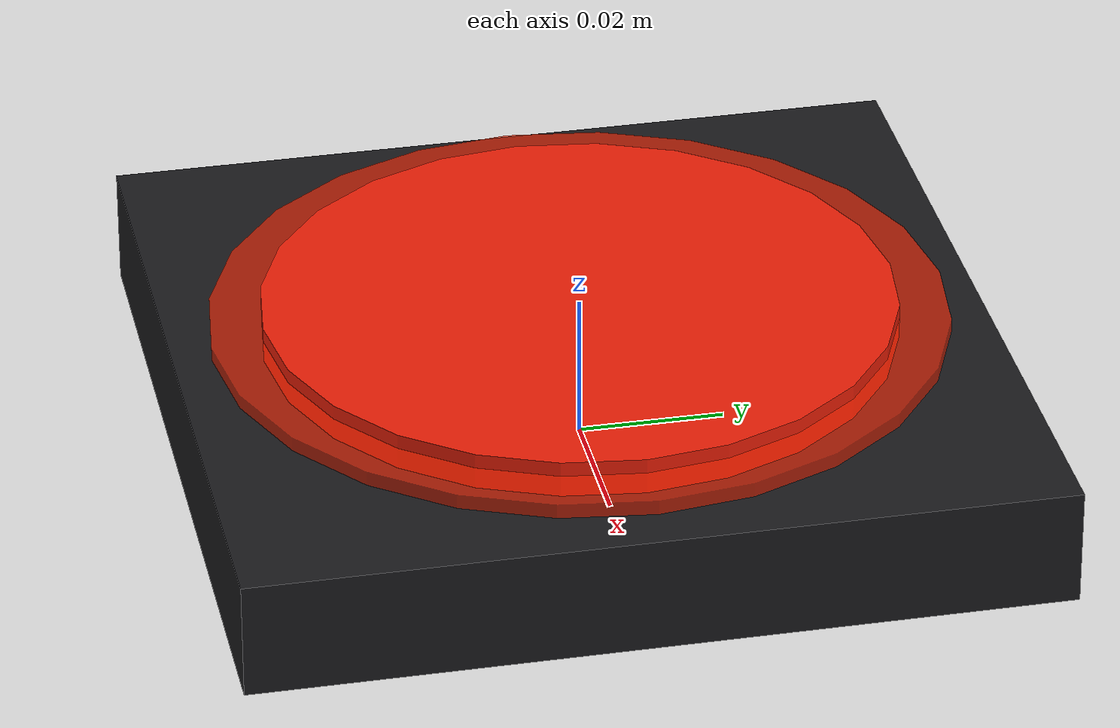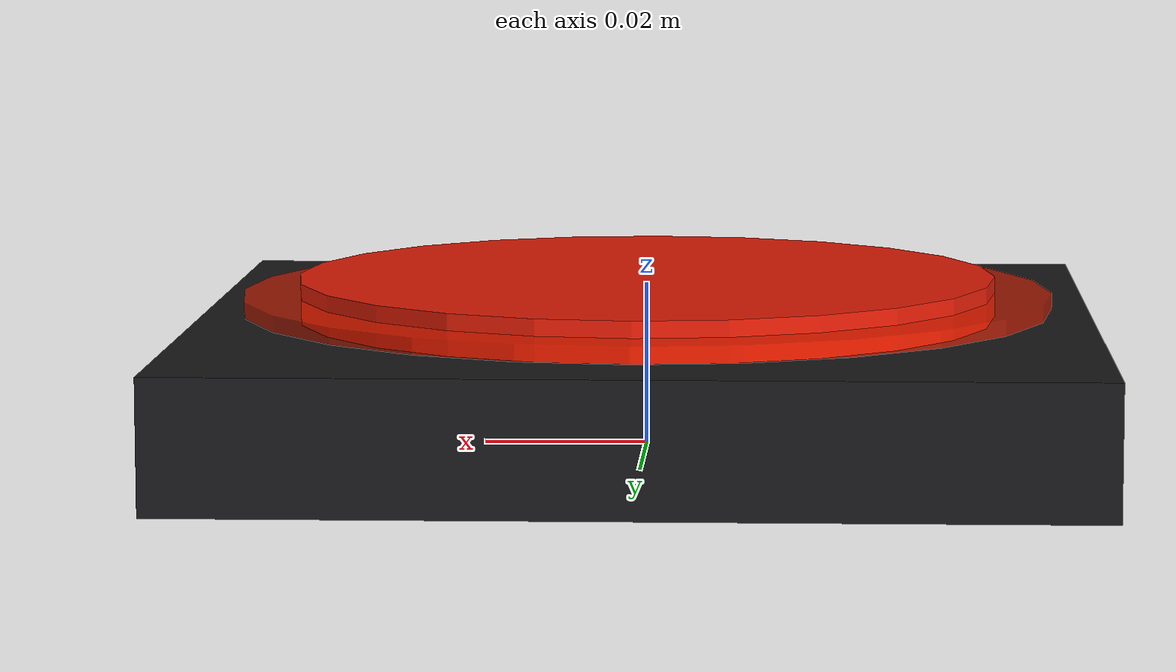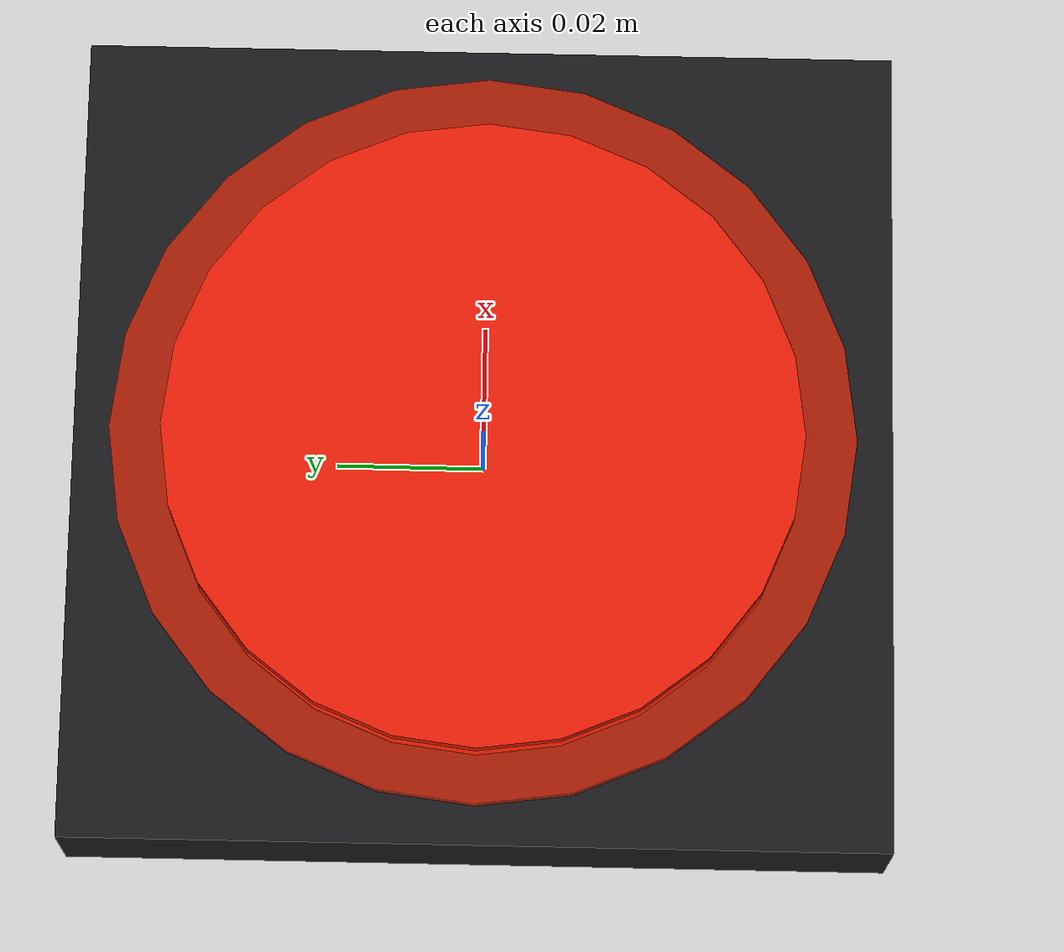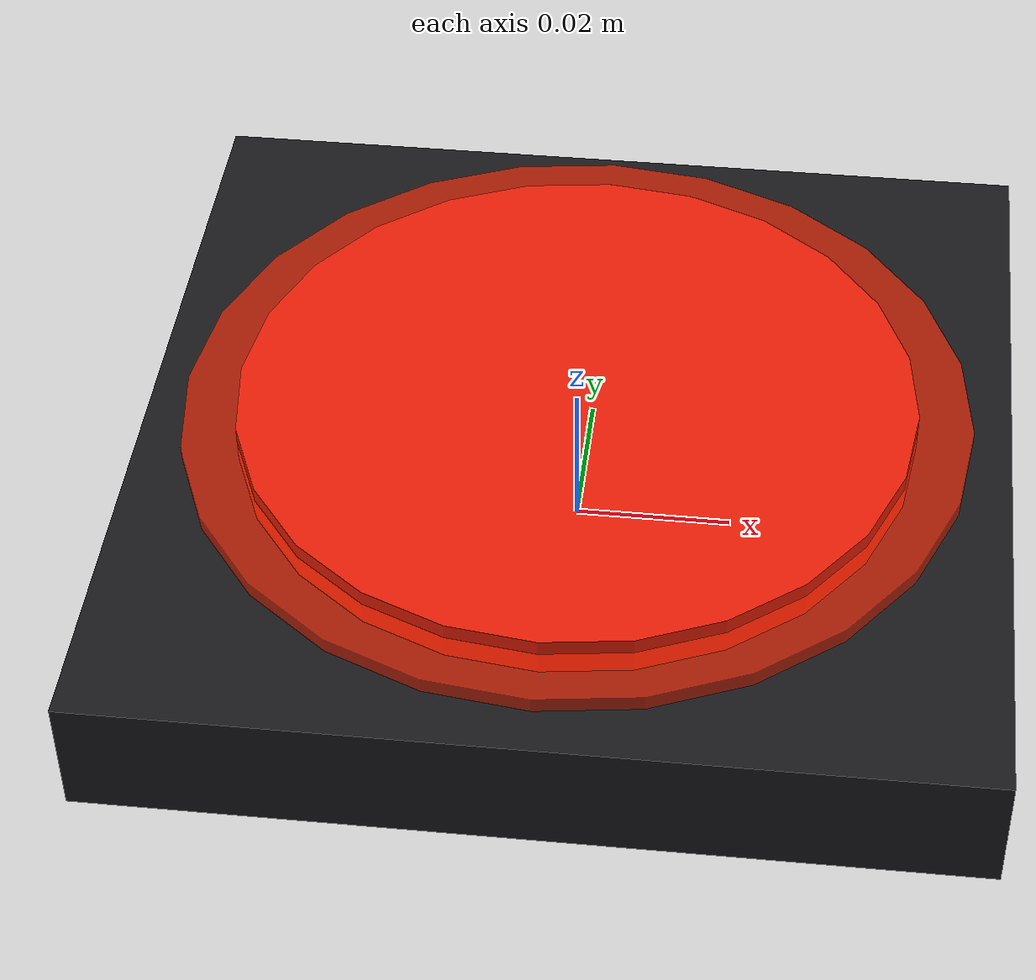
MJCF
<mujoco model="physcog_hot_plate">
  <asset>
    <material name="hot_plate_base" rgba="0.10 0.10 0.11 1.0"
              reflectance="0.25" specular="0.45" shininess="0.35"/>
    <material name="hot_burner" rgba="0.92 0.12 0.03 1.0"
              reflectance="0.20" specular="0.25" shininess="0.20"/>
  </asset>
  <worldbody>
    <body>
      <body name="object">
        <!-- 11 cm square compact hot plate; small enough for the native gap. -->
        <geom name="base_visual" type="box" size="0.055 0.055 0.008"
              pos="0 0 0.008" group="1" contype="0" conaffinity="0"
              material="hot_plate_base"/>
        <geom name="base_collision" type="box" size="0.055 0.055 0.008"
              pos="0 0 0.008" group="0" density="300"
              friction="0.95 0.3 0.1" rgba="0.1 0.1 0.1 0.3"/>
        <body name="burner" pos="0 0 0.018">
          <geom name="burner_visual" type="cylinder" size="0.043 0.003"
                group="1" contype="0" conaffinity="0" material="hot_burner"/>
          <site name="thermal_region" type="cylinder" size="0.050 0.001"
                rgba="1.0 0.16 0.02 0.65"/>
        </body>
      </body>
      <site name="bottom_site" pos="0 0 0" size="0.005" rgba="0 0 0 0"/>
      <site name="top_site" pos="0 0 0.022" size="0.005" rgba="0 0 0 0"/>
      <site name="horizontal_radius_site" pos="0.055 0.055 0.008"
            size="0.005" rgba="0 0 0 0"/>
    </body>
  </worldbody>
</mujoco>
